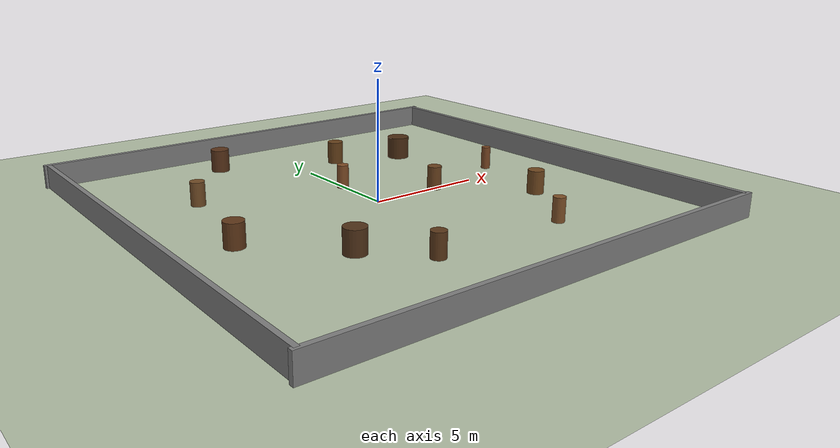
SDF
<?xml version="1.0" ?>
<sdf version="1.8">
  <world name="random_forest_world">
    <!-- Physics -->
    <physics name="4ms" type="ignored">
      <max_step_size>0.004</max_step_size>
      <real_time_factor>1.0</real_time_factor>
      <real_time_update_rate>250</real_time_update_rate>
    </physics>
    <plugin filename="gz-sim-physics-system" name="gz::sim::systems::Physics"/>
    <plugin filename="gz-sim-sensors-system" name="gz::sim::systems::Sensors">
      <render_engine>ogre2</render_engine>
    </plugin>
    <plugin filename="gz-sim-scene-broadcaster-system" name="gz::sim::systems::SceneBroadcaster"/>
    <plugin filename="gz-sim-user-commands-system" name="gz::sim::systems::UserCommands"/>

    <!-- Light -->
    <light type="directional" name="sun">
      <cast_shadows>true</cast_shadows>
      <pose>0 0 10 0 0 0</pose>
      <diffuse>0.8 0.8 0.8 1</diffuse>
      <specular>0.2 0.2 0.2 1</specular>
      <attenuation>
        <range>1000</range>
        <constant>0.9</constant>
        <linear>0.01</linear>
        <quadratic>0.001</quadratic>
      </attenuation>
      <direction>-0.5 0.1 -0.9</direction>
    </light>

    <!-- Ground Plane -->
    <model name="ground_plane">
      <static>true</static>
      <link name="link">
        <collision name="collision">
          <geometry><plane><normal>0 0 1</normal><size>100 100</size></plane></geometry>
        </collision>
        <visual name="visual">
          <geometry><plane><normal>0 0 1</normal><size>100 100</size></plane></geometry>
          <material>
            <ambient>0.7 0.75 0.65 1</ambient>
            <diffuse>0.7 0.75 0.65 1</diffuse>
          </material>
        </visual>
      </link>
    </model>

    <!-- ==================== OUTER WALLS (20m×20m) ==================== -->
    <model name="wall_north">
      <static>true</static>
      <pose>0 10 0.5 0 0 0</pose>
      <link name="link">
        <collision name="collision"><geometry><box><size>20.4 0.2 1.0</size></box></geometry></collision>
        <visual name="visual">
          <geometry><box><size>20.4 0.2 1.0</size></box></geometry>
          <material><ambient>0.5 0.5 0.5 1</ambient><diffuse>0.5 0.5 0.5 1</diffuse></material>
        </visual>
      </link>
    </model>
    <model name="wall_south">
      <static>true</static>
      <pose>0 -10 0.5 0 0 0</pose>
      <link name="link">
        <collision name="collision"><geometry><box><size>20.4 0.2 1.0</size></box></geometry></collision>
        <visual name="visual">
          <geometry><box><size>20.4 0.2 1.0</size></box></geometry>
          <material><ambient>0.5 0.5 0.5 1</ambient><diffuse>0.5 0.5 0.5 1</diffuse></material>
        </visual>
      </link>
    </model>
    <model name="wall_east">
      <static>true</static>
      <pose>10 0 0.5 0 0 0</pose>
      <link name="link">
        <collision name="collision"><geometry><box><size>0.2 20.0 1.0</size></box></geometry></collision>
        <visual name="visual">
          <geometry><box><size>0.2 20.0 1.0</size></box></geometry>
          <material><ambient>0.5 0.5 0.5 1</ambient><diffuse>0.5 0.5 0.5 1</diffuse></material>
        </visual>
      </link>
    </model>
    <model name="wall_west">
      <static>true</static>
      <pose>-10 0 0.5 0 0 0</pose>
      <link name="link">
        <collision name="collision"><geometry><box><size>0.2 20.0 1.0</size></box></geometry></collision>
        <visual name="visual">
          <geometry><box><size>0.2 20.0 1.0</size></box></geometry>
          <material><ambient>0.5 0.5 0.5 1</ambient><diffuse>0.5 0.5 0.5 1</diffuse></material>
        </visual>
      </link>
    </model>

    <!-- ==================== TREE OBSTACLES (12 cylinders) ==================== -->
    <!-- 원기둥 "나무" 장애물, 다양한 반지름 (0.2~0.5m) -->
    <!-- 스폰 위치 (0,0) 주변 2m 이내는 비워둠 -->

    <model name="tree_01">
      <static>true</static>
      <pose>2 6 0.5 0 0 0</pose>
      <link name="link">
        <collision name="collision"><geometry><cylinder><radius>0.35</radius><length>1.0</length></cylinder></geometry></collision>
        <visual name="visual">
          <geometry><cylinder><radius>0.35</radius><length>1.0</length></cylinder></geometry>
          <material><ambient>0.4 0.25 0.1 1</ambient><diffuse>0.4 0.25 0.1 1</diffuse></material>
        </visual>
      </link>
    </model>

    <model name="tree_02">
      <static>true</static>
      <pose>-3 8 0.5 0 0 0</pose>
      <link name="link">
        <collision name="collision"><geometry><cylinder><radius>0.4</radius><length>1.0</length></cylinder></geometry></collision>
        <visual name="visual">
          <geometry><cylinder><radius>0.4</radius><length>1.0</length></cylinder></geometry>
          <material><ambient>0.35 0.2 0.1 1</ambient><diffuse>0.35 0.2 0.1 1</diffuse></material>
        </visual>
      </link>
    </model>

    <model name="tree_03">
      <static>true</static>
      <pose>-6 4 0.5 0 0 0</pose>
      <link name="link">
        <collision name="collision"><geometry><cylinder><radius>0.3</radius><length>1.0</length></cylinder></geometry></collision>
        <visual name="visual">
          <geometry><cylinder><radius>0.3</radius><length>1.0</length></cylinder></geometry>
          <material><ambient>0.45 0.3 0.15 1</ambient><diffuse>0.45 0.3 0.15 1</diffuse></material>
        </visual>
      </link>
    </model>

    <model name="tree_04">
      <static>true</static>
      <pose>5 5 0.5 0 0 0</pose>
      <link name="link">
        <collision name="collision"><geometry><cylinder><radius>0.5</radius><length>1.0</length></cylinder></geometry></collision>
        <visual name="visual">
          <geometry><cylinder><radius>0.5</radius><length>1.0</length></cylinder></geometry>
          <material><ambient>0.3 0.18 0.08 1</ambient><diffuse>0.3 0.18 0.08 1</diffuse></material>
        </visual>
      </link>
    </model>

    <model name="tree_05">
      <static>true</static>
      <pose>0 2.5 0.5 0 0 0</pose>
      <link name="link">
        <collision name="collision"><geometry><cylinder><radius>0.25</radius><length>1.0</length></cylinder></geometry></collision>
        <visual name="visual">
          <geometry><cylinder><radius>0.25</radius><length>1.0</length></cylinder></geometry>
          <material><ambient>0.5 0.3 0.15 1</ambient><diffuse>0.5 0.3 0.15 1</diffuse></material>
        </visual>
      </link>
    </model>

    <model name="tree_06">
      <static>true</static>
      <pose>-7 -1 0.5 0 0 0</pose>
      <link name="link">
        <collision name="collision"><geometry><cylinder><radius>0.4</radius><length>1.0</length></cylinder></geometry></collision>
        <visual name="visual">
          <geometry><cylinder><radius>0.4</radius><length>1.0</length></cylinder></geometry>
          <material><ambient>0.38 0.22 0.1 1</ambient><diffuse>0.38 0.22 0.1 1</diffuse></material>
        </visual>
      </link>
    </model>

    <model name="tree_07">
      <static>true</static>
      <pose>3 0 0.5 0 0 0</pose>
      <link name="link">
        <collision name="collision"><geometry><cylinder><radius>0.3</radius><length>1.0</length></cylinder></geometry></collision>
        <visual name="visual">
          <geometry><cylinder><radius>0.3</radius><length>1.0</length></cylinder></geometry>
          <material><ambient>0.42 0.26 0.12 1</ambient><diffuse>0.42 0.26 0.12 1</diffuse></material>
        </visual>
      </link>
    </model>

    <model name="tree_08">
      <static>true</static>
      <pose>7 1 0.5 0 0 0</pose>
      <link name="link">
        <collision name="collision"><geometry><cylinder><radius>0.2</radius><length>1.0</length></cylinder></geometry></collision>
        <visual name="visual">
          <geometry><cylinder><radius>0.2</radius><length>1.0</length></cylinder></geometry>
          <material><ambient>0.48 0.28 0.14 1</ambient><diffuse>0.48 0.28 0.14 1</diffuse></material>
        </visual>
      </link>
    </model>

    <model name="tree_09">
      <static>true</static>
      <pose>-4 -4 0.5 0 0 0</pose>
      <link name="link">
        <collision name="collision"><geometry><cylinder><radius>0.45</radius><length>1.0</length></cylinder></geometry></collision>
        <visual name="visual">
          <geometry><cylinder><radius>0.45</radius><length>1.0</length></cylinder></geometry>
          <material><ambient>0.32 0.2 0.1 1</ambient><diffuse>0.32 0.2 0.1 1</diffuse></material>
        </visual>
      </link>
    </model>

    <model name="tree_10">
      <static>true</static>
      <pose>6 -3 0.5 0 0 0</pose>
      <link name="link">
        <collision name="collision"><geometry><cylinder><radius>0.35</radius><length>1.0</length></cylinder></geometry></collision>
        <visual name="visual">
          <geometry><cylinder><radius>0.35</radius><length>1.0</length></cylinder></geometry>
          <material><ambient>0.44 0.28 0.12 1</ambient><diffuse>0.44 0.28 0.12 1</diffuse></material>
        </visual>
      </link>
    </model>

    <model name="tree_11">
      <static>true</static>
      <pose>-2 -6 0.5 0 0 0</pose>
      <link name="link">
        <collision name="collision"><geometry><cylinder><radius>0.3</radius><length>1.0</length></cylinder></geometry></collision>
        <visual name="visual">
          <geometry><cylinder><radius>0.3</radius><length>1.0</length></cylinder></geometry>
          <material><ambient>0.36 0.22 0.1 1</ambient><diffuse>0.36 0.22 0.1 1</diffuse></material>
        </visual>
      </link>
    </model>

    <model name="tree_12">
      <static>true</static>
      <pose>4 -6 0.5 0 0 0</pose>
      <link name="link">
        <collision name="collision"><geometry><cylinder><radius>0.25</radius><length>1.0</length></cylinder></geometry></collision>
        <visual name="visual">
          <geometry><cylinder><radius>0.25</radius><length>1.0</length></cylinder></geometry>
          <material><ambient>0.5 0.32 0.16 1</ambient><diffuse>0.5 0.32 0.16 1</diffuse></material>
        </visual>
      </link>
    </model>

  </world>
</sdf>
